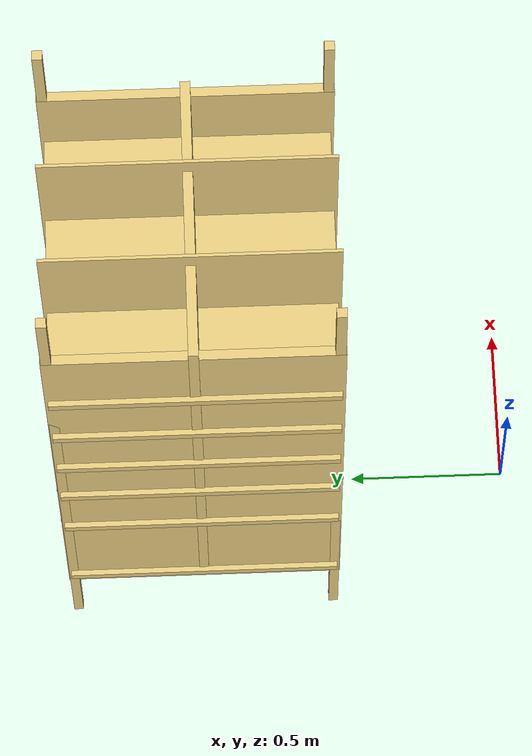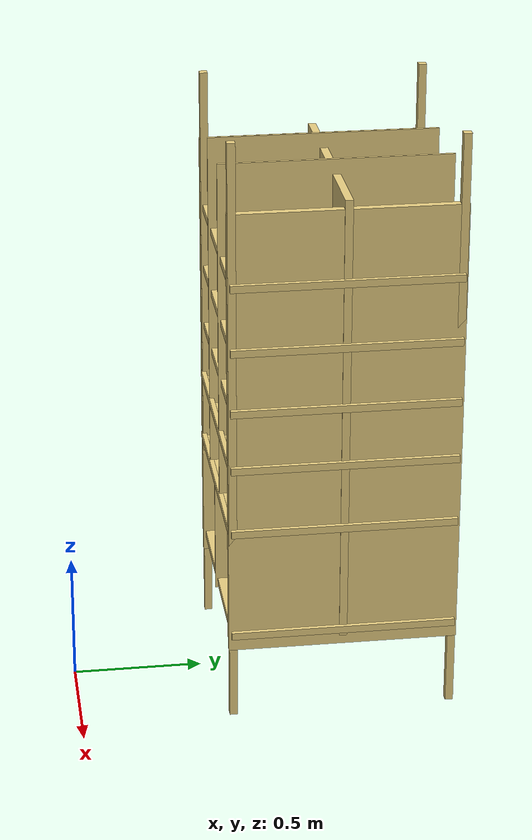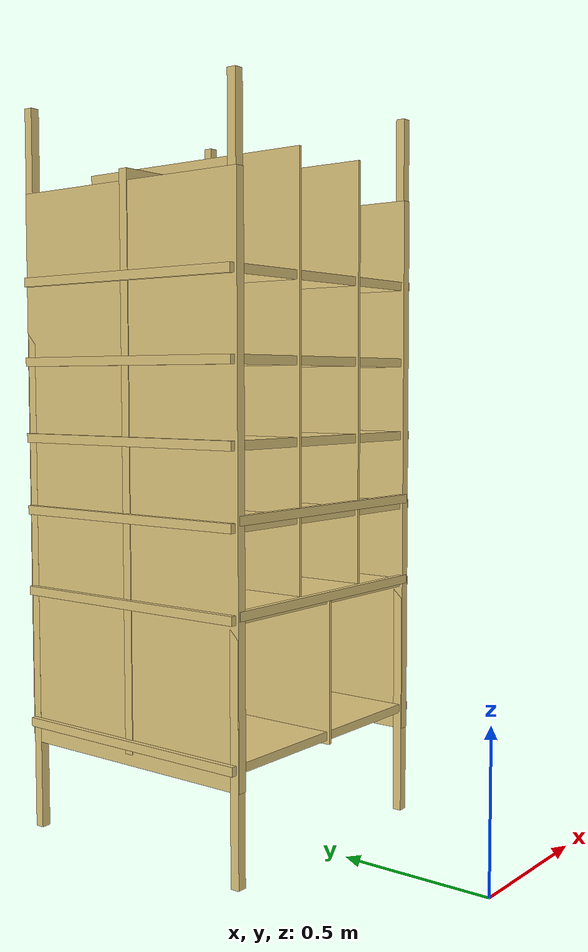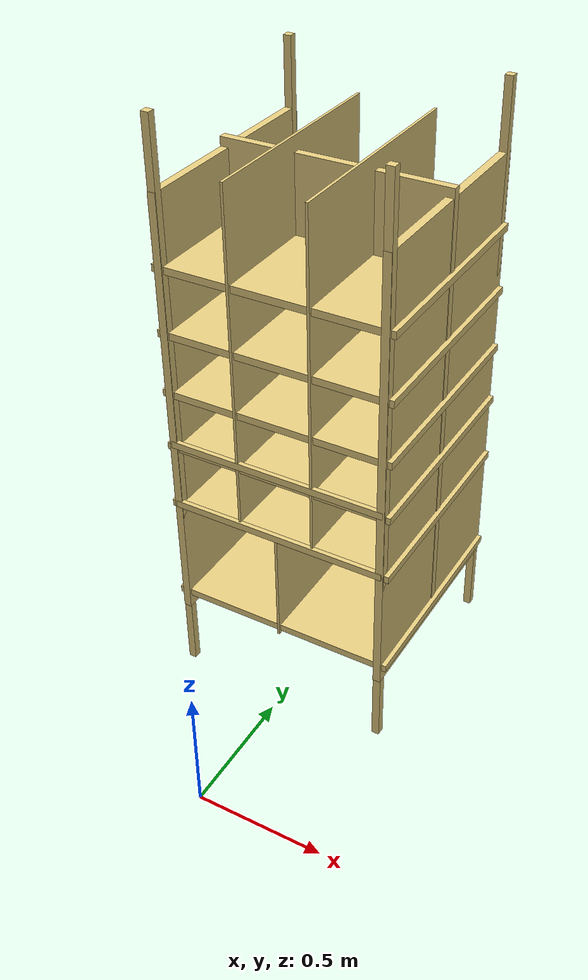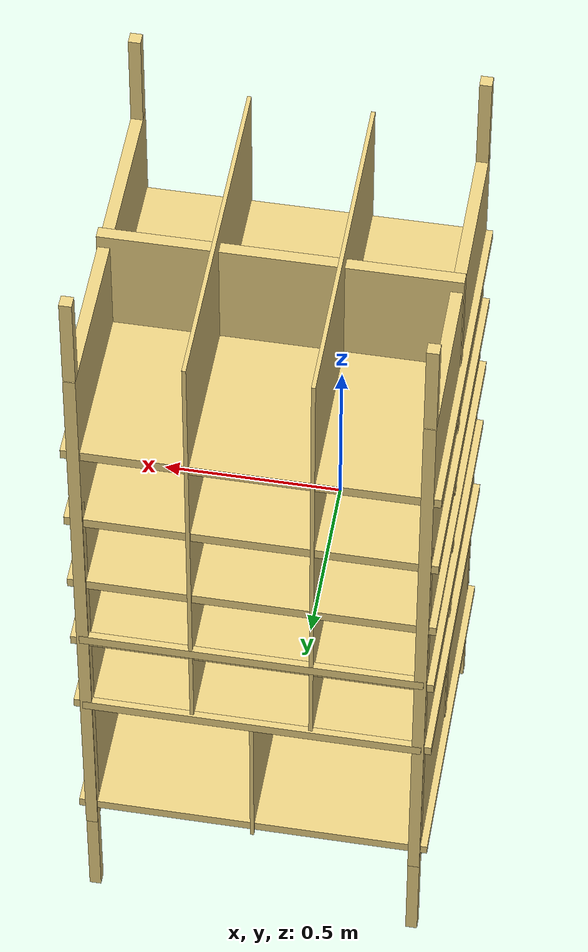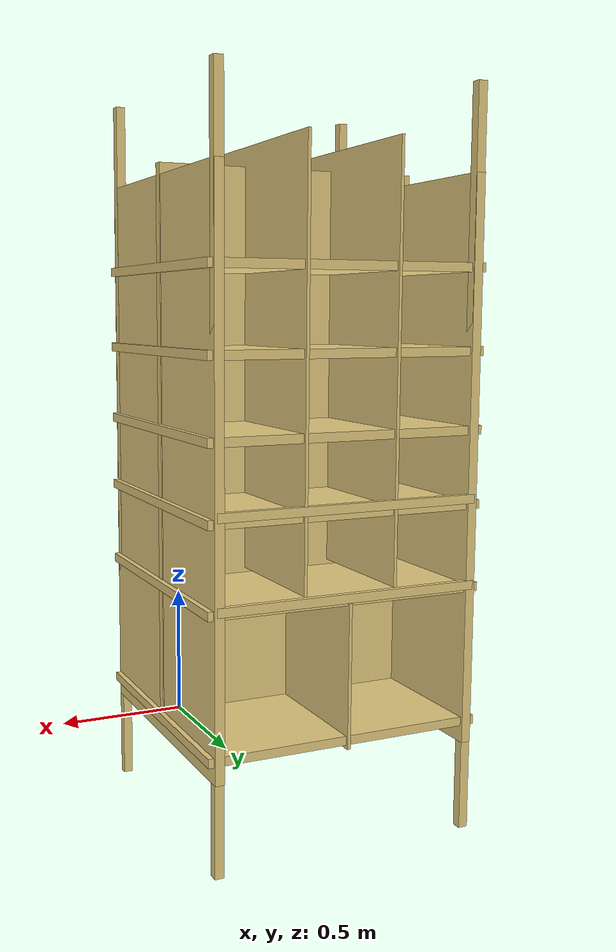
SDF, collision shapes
<?xml version="1.0" ?>
<sdf version="1.4">
  <model name="Amazon Pod">
  	<static>1</static>
  	<pose>0 1 0 0 0 0</pose>
    <link name="pod_link">
      <inertial>
        <pose>0.0 .0 1.2045 0 0 0</pose>
        <mass>0</mass>
        <inertia>
          <ixx>0</ixx>
          <ixy>0.0</ixy>
          <ixz>0.0</ixz>
          <izz>0.0</izz>
          <iyz>0.0</iyz>
          <iyy>0.0</iyy>
        </inertia>
      </inertial>

      <visual name="pod_visual">
        <pose>0 0 0 1.5707 0 0 </pose>
        <geometry>
          <mesh>
            <uri>meshes/pod_lowres.stl</uri>
          </mesh>
        </geometry>
         <material>
            <diffuse>0.9 0.8 0.5 1</diffuse>
          </material>
      </visual>

      <collision concave="yes" name="pod_collision">
        <pose>0 0 1.21515 1.5707 0 0</pose>
        <geometry>
         		<box>
              <size>0.875 1.754 0.03</size>
            </box>
        </geometry>
      </collision>

      <collision concave="yes" name="pod_collision">
        <pose>-0.42 0 1.18 1.5707 0 1.5707 </pose>
        <geometry>
         		<box>
              <size>0.875 1.754 0.03</size>
            </box>
        </geometry>
      </collision>

       <collision concave="yes" name="pod_collision">
        <pose>0.42 0.42 1.17 1.5707 0 0</pose>
        <geometry>
         		<box>
              <size>0.03 2.3 0.03</size>
            </box>
        </geometry>
      </collision>
 			<collision concave="yes" name="pod_collision">
        <pose>-0.42 0.42 1.17 1.5707 0 0</pose>
        <geometry>
         		<box>
              <size>0.03 2.3 0.03</size>
            </box>
        </geometry>
      </collision>
      <collision concave="yes" name="pod_collision">
        <pose>-0.42 -0.42 1.17 1.5707 0 0</pose>
        <geometry>
         		<box>
              <size>0.03 2.3 0.03</size>
            </box>
        </geometry>
      </collision>
      <collision concave="yes" name="pod_collision">
        <pose>0.42 -0.42 1.17 1.5707 0 0</pose>
        <geometry>
         		<box>
              <size>0.03 2.3 0.03</size>
            </box>
        </geometry>
      </collision>
       <collision concave="yes" name="pod_collision">
        <pose>0.15 0 1.49 1.5707 0 1.5707 </pose>
        <geometry>
         		<box>
              <size>0.875 1.32 0.01</size>
            </box>
        </geometry>
      </collision>
      <collision concave="yes" name="pod_collision">
        <pose>-0.15 0 1.49 1.5707 0 1.5707 </pose>
        <geometry>
         		<box>
              <size>0.875 1.32 0.01</size>
            </box>
        </geometry>
      </collision>
       <collision concave="yes" name="pod_collision">
        <pose>0 0 .57 1.5707 0 1.5707 </pose>
        <geometry>
         		<box>
              <size>0.875 0.45 0.01</size>
            </box>
        </geometry>
      </collision>
 			<collision concave="yes" name="pod_collision">
        <pose>0.42 0 1.18 1.5707 0 1.5707 </pose>
        <geometry>
         		<box>
              <size>0.875 1.754 0.03</size>
            </box>
        </geometry>
      </collision>
      	<collision concave="yes" name="pod_collision">
        <pose>0 0 1.06 0 0 0 </pose>
        <geometry>
         		<box>
              <size>0.905 0.856 0.028 </size>
            </box>
        </geometry>
      </collision>
      <collision concave="yes" name="pod_collision">
        <pose>0 0 1.06 0 0 0 </pose>
        <geometry>
         		<box>
              <size>0.905 0.856 0.028 </size>
            </box>
        </geometry>
      </collision>
			<collision concave="yes" name="pod_collision">
        <pose>0 0 0.80 0 0 0 </pose>
        <geometry>
         		<box>
              <size>0.905 0.856 0.028 </size>
            </box>
        </geometry>
      </collision>
      <collision concave="yes" name="pod_collision">
        <pose>0 0.43 0.81 0 0 0 </pose>
        <geometry>
         		<box>
              <size>0.856 0.018  0.028 </size>
            </box>
        </geometry>
      </collision>
       <collision concave="yes" name="pod_collision">
        <pose>0 -0.43 0.81 0 0 0 </pose>
        <geometry>
         		<box>
              <size>0.856 0.018  0.028 </size>
            </box>
        </geometry>
      </collision>
       <collision concave="yes" name="pod_collision">
        <pose>0 0.43 1.08 0 0 0 </pose>
        <geometry>
         		<box>
              <size>0.856 0.018  0.028 </size>
            </box>
        </geometry>
      </collision>
       <collision concave="yes" name="pod_collision">
        <pose>0 -0.43 1.08 0 0 0 </pose>
        <geometry>
         		<box>
              <size>0.856 0.018  0.028 </size>
            </box>
        </geometry>
      </collision>
      <collision concave="yes" name="pod_collision">
        <pose>0 0 0.37 0 0 0 </pose>
        <geometry>
         		<box>
              <size>0.905 0.856 0.028 </size>
            </box>
        </geometry>
      </collision>
       <collision concave="yes" name="pod_collision">
        <pose>0 0 1.29 0 0 0 </pose>
        <geometry>
         		<box>
              <size>0.905 0.856 0.028 </size>
            </box>
        </geometry>
      </collision>
       <collision concave="yes" name="pod_collision">
        <pose>0 0 1.53 0 0 0 </pose>
        <geometry>
         		<box>
              <size>0.905 0.856 0.028 </size>
            </box>
        </geometry>
      </collision>
      <collision concave="yes" name="pod_collision">
        <pose>0 0 1.78 0 0 0 </pose>
        <geometry>
         		<box>
              <size>0.905 0.856 0.028 </size>
            </box>
        </geometry>
      </collision>
    </link>
  </model>
</sdf>
